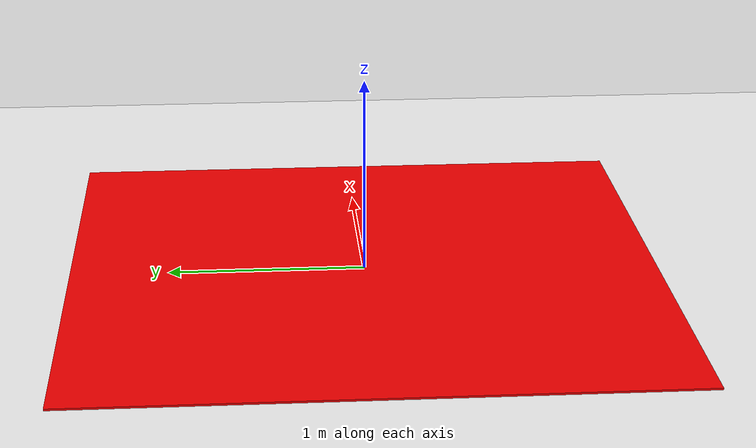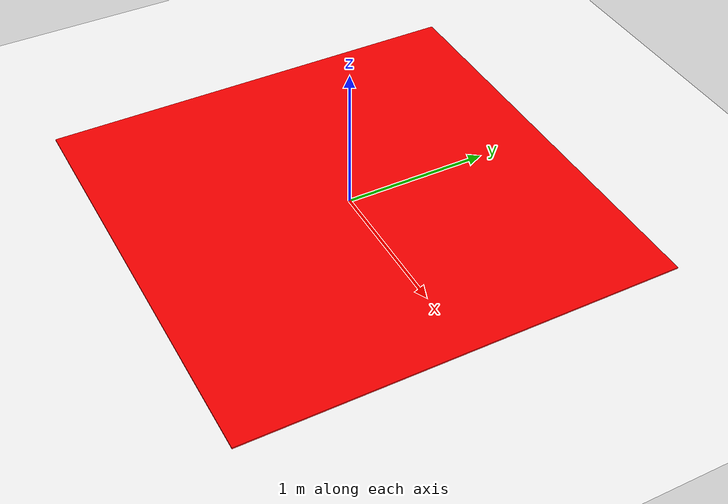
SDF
<sdf version='1.9'>
  <world name='droneworld'>
    <!-- Physics and gravity -->
    <physics name="default_physics" type="ode">
      <max_step_size>0.004</max_step_size>
      <real_time_factor>1.0</real_time_factor>
      <real_time_update_rate>250</real_time_update_rate>
    </physics>
    <gravity>0 0 -9.8</gravity>

    <!-- Static wind baseline (required for Gazebo) -->
    <wind>
      <linear_velocity>3.0 1.5 0</linear_velocity>
    </wind>

    <!-- Magnetisch veld -->
    <magnetic_field>6e-06 2.3e-05 -4.2e-05</magnetic_field>

    <!-- Scene with blue background (no problematic sky element) -->
    <scene>
      <grid>false</grid>
      <ambient>0.8 0.8 0.8 1</ambient>
      <background>0.5 0.7 1.0 1</background>
      <shadows>true</shadows>
    </scene>

    <!-- Ground plane (neutral grey, no pattern) -->
    <model name='ground_plane'>
      <static>true</static>
      <link name='link'>
        <collision name='collision'>
          <geometry>
            <plane>
              <normal>0 0 1</normal>
              <size>1 1</size>
            </plane>
          </geometry>
          <surface>
            <friction>
              <ode/>
            </friction>
            <bounce/>
            <contact/>
          </surface>
        </collision>
        <visual name='visual'>
          <geometry>
            <plane>
              <normal>0 0 1</normal>
              <size>100000 100000</size>
            </plane>
          </geometry>
          <material>
            <ambient>1.0 1.0 1.0 1.0</ambient>
            <diffuse>1.0 1.0 1.0 1.0</diffuse>
            <specular>0.1 0.1 0.1 1.0</specular>
            <emissive>0.0 0.0 0.0 1.0</emissive>
            <pbr>
              <metal>
                <albedo_map>/home/ubuntu/mindef-workspace/ros2_ws/src/simulatie/PX4-Autopilot/Tools/simulation/gz/media/materials/textures/map.png</albedo_map>
              </metal>
            </pbr>
          </material>
        </visual>
        <pose>0 0 0 0 -0 0</pose>
        <inertial>
          <pose>0 0 0 0 -0 0</pose>
          <mass>1</mass>
          <inertia>
            <ixx>1</ixx>
            <ixy>0</ixy>
            <ixz>0</ixz>
            <iyy>1</iyy>
            <iyz>0</iyz>
            <izz>1</izz>
          </inertia>
        </inertial>
        <enable_wind>true</enable_wind>
      </link>
      <pose>0 0 0 0 -0 0</pose>
      <self_collide>false</self_collide>
    </model>

    <!-- Red landing box (visual only, no collision) -->
    <model name="landing_box">
      <static>true</static>
      <link name="box_link">
        <visual name="box_visual">
          <geometry>
            <box>
              <size>3 3 0.01</size>
            </box>
          </geometry>
          <material>
            <ambient>1 0 0 1</ambient>
            <diffuse>1 0 0 1</diffuse>
            <specular>0.2 0 0 1</specular>
          </material>
        </visual>
        <pose>0 0 0.005 0 0 0</pose> <!-- Center at (0,5,0), just above ground -->
      </link>
      <pose>0 0 0 0 0 0</pose>
      <self_collide>false</self_collide>
    </model>

    <!-- Zonlicht -->
    <light name='sunUTC' type='directional'>
      <pose>0 0 500 0 -0 0</pose>
      <cast_shadows>true</cast_shadows>
      <intensity>1</intensity>
      <direction>0.001 0.625 -0.78</direction>
      <diffuse>0.904 0.904 0.904 1</diffuse>
      <specular>0.271 0.271 0.271 1</specular>
      <attenuation>
        <range>2000</range>
        <linear>0</linear>
        <constant>1</constant>
        <quadratic>0</quadratic>
      </attenuation>
      <spot>
        <inner_angle>0</inner_angle>
        <outer_angle>0</outer_angle>
        <falloff>0</falloff>
      </spot>
    </light>

    <!-- Sferische coördinaten: realistisch voor Amsterdam, nederland -->
    <spherical_coordinates>
      <surface_model>EARTH_WGS84</surface_model>
      <world_frame_orientation>ENU</world_frame_orientation>
      <latitude_deg>52.370216</latitude_deg>
      <longitude_deg>4.895168</longitude_deg>
      <elevation>0</elevation>
    </spherical_coordinates>

    <model name="wind_system">
      <static>true</static>
      <link name="wind_link"/>
      <plugin filename="libWindPlugin.so" name="gz::sim::v8::systems::WindPlugin">
        <wind_velocity_mean>3.0 1.5 0</wind_velocity_mean>
        <wind_gust_amplitude>3.0</wind_gust_amplitude>
        <wind_gust_frequency>0.15</wind_gust_frequency>
        <wind_gust_decay_time>3.0</wind_gust_decay_time>
        <wind_turbulence_amplitude>0.5</wind_turbulence_amplitude>
        <wind_vertical_gust_amplitude>0.3</wind_vertical_gust_amplitude>
        <drag_cda>0.06</drag_cda>
        <max_force>50.0</max_force>
        <target_model>evo_tactical</target_model>
      </plugin>
    </model>

  </world>
</sdf>
